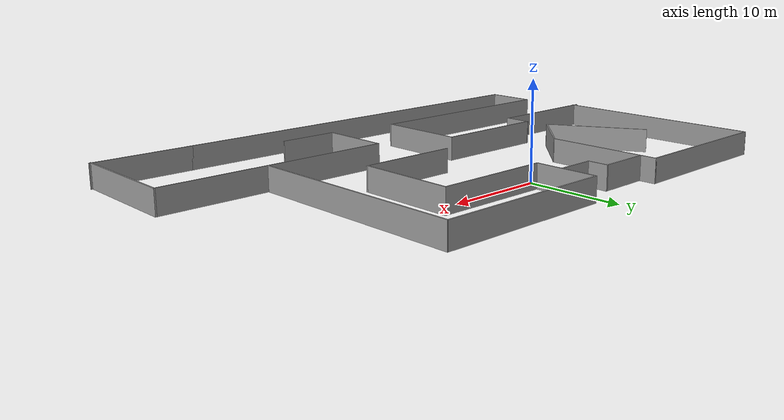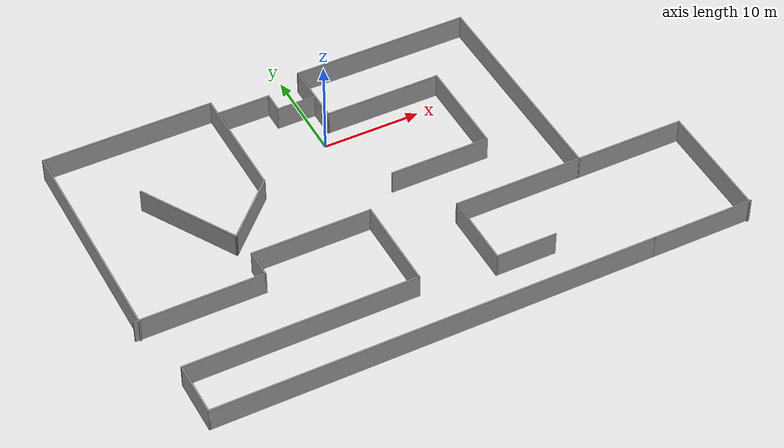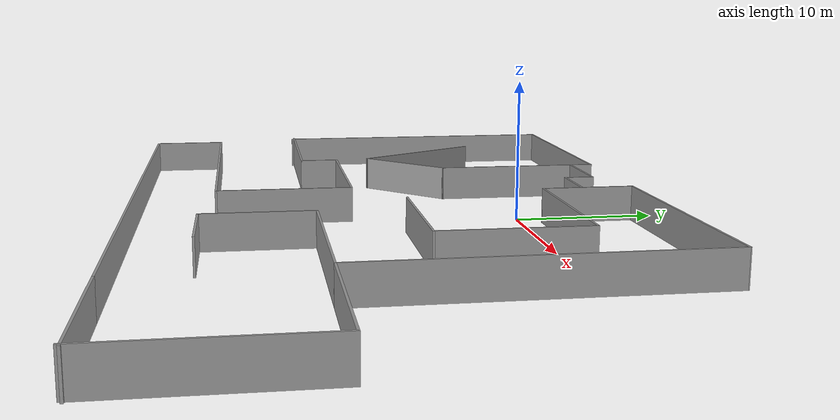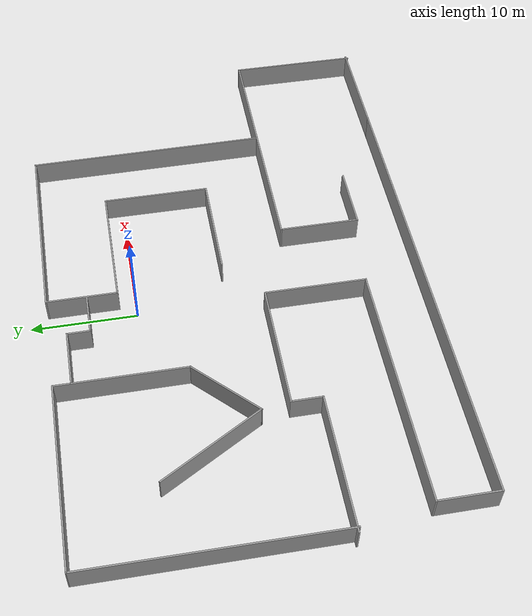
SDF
<?xml version='1.0'?>
<sdf version='1.7'>
  <model name='indoor'>
    <pose>2.23595 -9.50751 0 0 -0 0</pose>
    <link name='Wall_10'>
      <collision name='Wall_10_Collision'>
        <geometry>
          <box>
            <size>11 0.15 2.5</size>
          </box>
        </geometry>
        <pose>0 0 1.25 0 -0 0</pose>
      </collision>
      <visual name='Wall_10_Visual'>
        <pose>0 0 1.25 0 -0 0</pose>
        <geometry>
          <box>
            <size>11 0.15 2.5</size>
          </box>
        </geometry>
        <material>
          <script>
            <uri>file://media/materials/scripts/gazebo.material</uri>
            <name>Gazebo/Grey</name>
          </script>
          <ambient>1 1 1 1</ambient>
        </material>
        <meta>
          <layer>0</layer>
        </meta>
      </visual>
      <pose>-18.6044 4.94904 0 0 -0 2.0944</pose>
    </link>
    <link name='Wall_12'>
      <collision name='Wall_12_Collision'>
        <geometry>
          <box>
            <size>18.25 0.15 2.5</size>
          </box>
        </geometry>
        <pose>0 0 1.25 0 -0 0</pose>
      </collision>
      <visual name='Wall_12_Visual'>
        <pose>0 0 1.25 0 -0 0</pose>
        <geometry>
          <box>
            <size>18.25 0.15 2.5</size>
          </box>
        </geometry>
        <material>
          <script>
            <uri>file://media/materials/scripts/gazebo.material</uri>
            <name>Gazebo/Grey</name>
          </script>
          <ambient>1 1 1 1</ambient>
        </material>
        <meta>
          <layer>0</layer>
        </meta>
      </visual>
      <pose>7.93209 17.7249 0 0 -0 3.14159</pose>
    </link>
    <link name='Wall_13'>
      <collision name='Wall_13_Collision'>
        <geometry>
          <box>
            <size>6.75 0.15 2.5</size>
          </box>
        </geometry>
        <pose>0 0 1.25 0 -0 0</pose>
      </collision>
      <visual name='Wall_13_Visual'>
        <pose>0 0 1.25 0 -0 0</pose>
        <geometry>
          <box>
            <size>6.75 0.15 2.5</size>
          </box>
        </geometry>
        <material>
          <script>
            <uri>file://media/materials/scripts/gazebo.material</uri>
            <name>Gazebo/Grey</name>
          </script>
          <ambient>1 1 1 1</ambient>
        </material>
        <meta>
          <layer>0</layer>
        </meta>
      </visual>
      <pose>-1.11791 14.4249 0 0 -0 -1.5708</pose>
    </link>
    <link name='Wall_14'>
      <collision name='Wall_14_Collision'>
        <geometry>
          <box>
            <size>12 0.15 2.5</size>
          </box>
        </geometry>
        <pose>0 0 1.25 0 -0 0</pose>
      </collision>
      <visual name='Wall_14_Visual'>
        <pose>0 0 1.25 0 -0 0</pose>
        <geometry>
          <box>
            <size>12 0.15 2.5</size>
          </box>
        </geometry>
        <material>
          <script>
            <uri>file://media/materials/scripts/gazebo.material</uri>
            <name>Gazebo/Grey</name>
          </script>
          <ambient>1 1 1 1</ambient>
        </material>
        <meta>
          <layer>0</layer>
        </meta>
      </visual>
      <pose>4.80709 11.1249 0 0 -0 0</pose>
    </link>
    <link name='Wall_15'>
      <collision name='Wall_15_Collision'>
        <geometry>
          <box>
            <size>10.25 0.15 2.5</size>
          </box>
        </geometry>
        <pose>0 0 1.25 0 -0 0</pose>
      </collision>
      <visual name='Wall_15_Visual'>
        <pose>0 0 1.25 0 -0 0</pose>
        <geometry>
          <box>
            <size>10.25 0.15 2.5</size>
          </box>
        </geometry>
        <material>
          <script>
            <uri>file://media/materials/scripts/gazebo.material</uri>
            <name>Gazebo/Grey</name>
          </script>
          <ambient>1 1 1 1</ambient>
        </material>
        <meta>
          <layer>0</layer>
        </meta>
      </visual>
      <pose>10.7321 6.07486 0 0 -0 -1.5708</pose>
    </link>
    <link name='Wall_16'>
      <collision name='Wall_16_Collision'>
        <geometry>
          <box>
            <size>10.25 0.15 2.5</size>
          </box>
        </geometry>
        <pose>0 0 1.25 0 -0 0</pose>
      </collision>
      <visual name='Wall_16_Visual'>
        <pose>0 0 1.25 0 -0 0</pose>
        <geometry>
          <box>
            <size>10.25 0.15 2.5</size>
          </box>
        </geometry>
        <material>
          <script>
            <uri>file://media/materials/scripts/gazebo.material</uri>
            <name>Gazebo/Grey</name>
          </script>
          <ambient>1 1 1 1</ambient>
        </material>
        <meta>
          <layer>0</layer>
        </meta>
      </visual>
      <pose>5.68209 1.02486 0 0 -0 3.14159</pose>
    </link>
    <link name='Wall_19'>
      <collision name='Wall_19_Collision'>
        <geometry>
          <box>
            <size>2.25 0.15 2.5</size>
          </box>
        </geometry>
        <pose>0 0 1.25 0 -0 0</pose>
      </collision>
      <visual name='Wall_19_Visual'>
        <pose>0 0 1.25 0 -0 0</pose>
        <geometry>
          <box>
            <size>2.25 0.15 2.5</size>
          </box>
        </geometry>
        <material>
          <script>
            <uri>file://media/materials/scripts/gazebo.material</uri>
            <name>Gazebo/Grey</name>
          </script>
          <ambient>1 1 1 1</ambient>
        </material>
        <meta>
          <layer>0</layer>
        </meta>
      </visual>
      <pose>-5.09125 15.025 0 0 -0 -1.5708</pose>
    </link>
    <link name='Wall_20'>
      <collision name='Wall_20_Collision'>
        <geometry>
          <box>
            <size>4 0.15 2.5</size>
          </box>
        </geometry>
        <pose>0 0 1.25 0 -0 0</pose>
      </collision>
      <visual name='Wall_20_Visual'>
        <pose>0 0 1.25 0 -0 0</pose>
        <geometry>
          <box>
            <size>4 0.15 2.5</size>
          </box>
        </geometry>
        <material>
          <script>
            <uri>file://media/materials/scripts/gazebo.material</uri>
            <name>Gazebo/Grey</name>
          </script>
          <ambient>1 1 1 1</ambient>
        </material>
        <meta>
          <layer>0</layer>
        </meta>
      </visual>
      <pose>-3.16625 13.975 0 0 -0 0</pose>
    </link>
    <link name='Wall_24'>
      <collision name='Wall_24_Collision'>
        <geometry>
          <box>
            <size>5.5 0.15 2.5</size>
          </box>
        </geometry>
        <pose>0 0 1.25 0 -0 0</pose>
      </collision>
      <visual name='Wall_24_Visual'>
        <pose>0 0 1.25 0 -0 0</pose>
        <geometry>
          <box>
            <size>5.5 0.15 2.5</size>
          </box>
        </geometry>
        <material>
          <script>
            <uri>file://media/materials/scripts/gazebo.material</uri>
            <name>Gazebo/Grey</name>
          </script>
          <ambient>1 1 1 1</ambient>
        </material>
        <meta>
          <layer>0</layer>
        </meta>
      </visual>
      <pose>-7.76625 16.075 0 0 -0 3.14159</pose>
    </link>
    <link name='Wall_26'>
      <collision name='Wall_26_Collision'>
        <geometry>
          <box>
            <size>13 0.15 2.5</size>
          </box>
        </geometry>
        <pose>0 0 1.25 0 -0 0</pose>
      </collision>
      <visual name='Wall_26_Visual'>
        <pose>0 0 1.25 0 -0 0</pose>
        <geometry>
          <box>
            <size>13 0.15 2.5</size>
          </box>
        </geometry>
        <material>
          <script>
            <uri>file://media/materials/scripts/gazebo.material</uri>
            <name>Gazebo/Grey</name>
          </script>
          <ambient>1 1 1 1</ambient>
        </material>
        <meta>
          <layer>0</layer>
        </meta>
      </visual>
      <pose>-21.975 -5.22606 0 0 -0 0</pose>
    </link>
    <link name='Wall_27'>
      <collision name='Wall_27_Collision'>
        <geometry>
          <box>
            <size>3 0.15 2.5</size>
          </box>
        </geometry>
        <pose>0 0 1.25 0 -0 0</pose>
      </collision>
      <visual name='Wall_27_Visual'>
        <pose>0 0 1.25 0 -0 0</pose>
        <geometry>
          <box>
            <size>3 0.15 2.5</size>
          </box>
        </geometry>
        <material>
          <script>
            <uri>file://media/materials/scripts/gazebo.material</uri>
            <name>Gazebo/Grey</name>
          </script>
          <ambient>1 1 1 1</ambient>
        </material>
        <meta>
          <layer>0</layer>
        </meta>
      </visual>
      <pose>-15.55 -3.80106 0 0 -0 1.5708</pose>
    </link>
    <link name='Wall_28'>
      <collision name='Wall_28_Collision'>
        <geometry>
          <box>
            <size>12.25 0.15 2.5</size>
          </box>
        </geometry>
        <pose>0 0 1.25 0 -0 0</pose>
      </collision>
      <visual name='Wall_28_Visual'>
        <pose>0 0 1.25 0 -0 0</pose>
        <geometry>
          <box>
            <size>12.25 0.15 2.5</size>
          </box>
        </geometry>
        <material>
          <script>
            <uri>file://media/materials/scripts/gazebo.material</uri>
            <name>Gazebo/Grey</name>
          </script>
          <ambient>1 1 1 1</ambient>
        </material>
        <meta>
          <layer>0</layer>
        </meta>
      </visual>
      <pose>-9.5 -2.37606 0 0 -0 0</pose>
    </link>
    <link name='Wall_29'>
      <collision name='Wall_29_Collision'>
        <geometry>
          <box>
            <size>9.75 0.15 2.5</size>
          </box>
        </geometry>
        <pose>0 0 1.25 0 -0 0</pose>
      </collision>
      <visual name='Wall_29_Visual'>
        <pose>0 0 1.25 0 -0 0</pose>
        <geometry>
          <box>
            <size>9.75 0.15 2.5</size>
          </box>
        </geometry>
        <material>
          <script>
            <uri>file://media/materials/scripts/gazebo.material</uri>
            <name>Gazebo/Grey</name>
          </script>
          <ambient>1 1 1 1</ambient>
        </material>
        <meta>
          <layer>0</layer>
        </meta>
      </visual>
      <pose>-3.45 -7.17606 0 0 -0 -1.5708</pose>
    </link>
    <link name='Wall_3'>
      <collision name='Wall_3_Collision'>
        <geometry>
          <box>
            <size>23.25 0.15 2.5</size>
          </box>
        </geometry>
        <pose>0 0 1.25 0 -0 0</pose>
      </collision>
      <visual name='Wall_3_Visual'>
        <pose>0 0 1.25 0 -0 0</pose>
        <geometry>
          <box>
            <size>23.25 0.15 2.5</size>
          </box>
        </geometry>
        <material>
          <script>
            <uri>file://media/materials/scripts/gazebo.material</uri>
            <name>Gazebo/Grey</name>
          </script>
          <ambient>1 1 1 1</ambient>
        </material>
        <meta>
          <layer>0</layer>
        </meta>
      </visual>
      <pose>17.0635 6.17486 0 0 -0 -1.56375</pose>
    </link>
    <link name='Wall_30'>
      <collision name='Wall_30_Collision'>
        <geometry>
          <box>
            <size>23.5 0.15 2.5</size>
          </box>
        </geometry>
        <pose>0 0 1.25 0 -0 0</pose>
      </collision>
      <visual name='Wall_30_Visual'>
        <pose>0 0 1.25 0 -0 0</pose>
        <geometry>
          <box>
            <size>23.5 0.15 2.5</size>
          </box>
        </geometry>
        <material>
          <script>
            <uri>file://media/materials/scripts/gazebo.material</uri>
            <name>Gazebo/Grey</name>
          </script>
          <ambient>1 1 1 1</ambient>
        </material>
        <meta>
          <layer>0</layer>
        </meta>
      </visual>
      <pose>-15.125 -11.9761 0 0 -0 3.14159</pose>
    </link>
    <link name='Wall_31'>
      <collision name='Wall_31_Collision'>
        <geometry>
          <box>
            <size>5.75 0.15 2.5</size>
          </box>
        </geometry>
        <pose>0 0 1.25 0 -0 0</pose>
      </collision>
      <visual name='Wall_31_Visual'>
        <pose>0 0 1.25 0 -0 0</pose>
        <geometry>
          <box>
            <size>5.75 0.15 2.5</size>
          </box>
        </geometry>
        <material>
          <script>
            <uri>file://media/materials/scripts/gazebo.material</uri>
            <name>Gazebo/Grey</name>
          </script>
          <ambient>1 1 1 1</ambient>
        </material>
        <meta>
          <layer>0</layer>
        </meta>
      </visual>
      <pose>-26.8 -14.7761 0 0 -0 -1.5708</pose>
    </link>
    <link name='Wall_32'>
      <collision name='Wall_32_Collision'>
        <geometry>
          <box>
            <size>45 0.15 2.5</size>
          </box>
        </geometry>
        <pose>0 0 1.25 0 -0 0</pose>
      </collision>
      <visual name='Wall_32_Visual'>
        <pose>0 0 1.25 0 -0 0</pose>
        <geometry>
          <box>
            <size>45 0.15 2.5</size>
          </box>
        </geometry>
        <material>
          <script>
            <uri>file://media/materials/scripts/gazebo.material</uri>
            <name>Gazebo/Grey</name>
          </script>
          <ambient>1 1 1 1</ambient>
        </material>
        <meta>
          <layer>0</layer>
        </meta>
      </visual>
      <pose>-4.375 -17.5761 0 0 -0 0</pose>
    </link>
    <link name='Wall_36'>
      <collision name='Wall_36_Collision'>
        <geometry>
          <box>
            <size>13.25 0.15 2.5</size>
          </box>
        </geometry>
        <pose>0 0 1.25 0 -0 0</pose>
      </collision>
      <visual name='Wall_36_Visual'>
        <pose>0 0 1.25 0 -0 0</pose>
        <geometry>
          <box>
            <size>13.25 0.15 2.5</size>
          </box>
        </geometry>
        <material>
          <script>
            <uri>file://media/materials/scripts/gazebo.material</uri>
            <name>Gazebo/Grey</name>
          </script>
          <ambient>1 1 1 1</ambient>
        </material>
        <meta>
          <layer>0</layer>
        </meta>
      </visual>
      <pose>10.5948 -5.37514 0 0 -0 3.14159</pose>
    </link>
    <link name='Wall_37'>
      <collision name='Wall_37_Collision'>
        <geometry>
          <box>
            <size>7.75 0.15 2.5</size>
          </box>
        </geometry>
        <pose>0 0 1.25 0 -0 0</pose>
      </collision>
      <visual name='Wall_37_Visual'>
        <pose>0 0 1.25 0 -0 0</pose>
        <geometry>
          <box>
            <size>7.75 0.15 2.5</size>
          </box>
        </geometry>
        <material>
          <script>
            <uri>file://media/materials/scripts/gazebo.material</uri>
            <name>Gazebo/Grey</name>
          </script>
          <ambient>1 1 1 1</ambient>
        </material>
        <meta>
          <layer>0</layer>
        </meta>
      </visual>
      <pose>4.04483 -9.17514 0 0 -0 -1.5708</pose>
    </link>
    <link name='Wall_38'>
      <collision name='Wall_38_Collision'>
        <geometry>
          <box>
            <size>6.25 0.15 2.5</size>
          </box>
        </geometry>
        <pose>0 0 1.25 0 -0 0</pose>
      </collision>
      <visual name='Wall_38_Visual'>
        <pose>0 0 1.25 0 -0 0</pose>
        <geometry>
          <box>
            <size>6.25 0.15 2.5</size>
          </box>
        </geometry>
        <material>
          <script>
            <uri>file://media/materials/scripts/gazebo.material</uri>
            <name>Gazebo/Grey</name>
          </script>
          <ambient>1 1 1 1</ambient>
        </material>
        <meta>
          <layer>0</layer>
        </meta>
      </visual>
      <pose>7.09483 -12.9751 0 0 -0 0</pose>
    </link>
    <link name='Wall_40'>
      <collision name='Wall_40_Collision'>
        <geometry>
          <box>
            <size>11.25 0.15 2.5</size>
          </box>
        </geometry>
        <pose>0 0 1.25 0 -0 0</pose>
      </collision>
      <visual name='Wall_40_Visual'>
        <pose>0 0 1.25 0 -0 0</pose>
        <geometry>
          <box>
            <size>11.25 0.15 2.5</size>
          </box>
        </geometry>
        <material>
          <script>
            <uri>file://media/materials/scripts/gazebo.material</uri>
            <name>Gazebo/Grey</name>
          </script>
          <ambient>1 1 1 1</ambient>
        </material>
        <meta>
          <layer>0</layer>
        </meta>
      </visual>
      <pose>22.6948 -5.37514 0 0 -0 0</pose>
    </link>
    <link name='Wall_41'>
      <collision name='Wall_41_Collision'>
        <geometry>
          <box>
            <size>12.5 0.15 2.5</size>
          </box>
        </geometry>
        <pose>0 0 1.25 0 -0 0</pose>
      </collision>
      <visual name='Wall_41_Visual'>
        <pose>0 0 1.25 0 -0 0</pose>
        <geometry>
          <box>
            <size>12.5 0.15 2.5</size>
          </box>
        </geometry>
        <material>
          <script>
            <uri>file://media/materials/scripts/gazebo.material</uri>
            <name>Gazebo/Grey</name>
          </script>
          <ambient>1 1 1 1</ambient>
        </material>
        <meta>
          <layer>0</layer>
        </meta>
      </visual>
      <pose>28.2448 -11.5501 0 0 -0 -1.5708</pose>
    </link>
    <link name='Wall_45'>
      <collision name='Wall_45_Collision'>
        <geometry>
          <box>
            <size>10.5 0.15 2.5</size>
          </box>
        </geometry>
        <pose>0 0 1.25 0 -0 0</pose>
      </collision>
      <visual name='Wall_45_Visual'>
        <pose>0 0 1.25 0 -0 0</pose>
        <geometry>
          <box>
            <size>10.5 0.15 2.5</size>
          </box>
        </geometry>
        <material>
          <script>
            <uri>file://media/materials/scripts/gazebo.material</uri>
            <name>Gazebo/Grey</name>
          </script>
          <ambient>1 1 1 1</ambient>
        </material>
        <meta>
          <layer>0</layer>
        </meta>
      </visual>
      <pose>23.225 -17.5761 0 0 -0 0</pose>
    </link>
    <link name='Wall_5'>
      <collision name='Wall_5_Collision'>
        <geometry>
          <box>
            <size>23.2502 0.15 2.5</size>
          </box>
        </geometry>
        <pose>0 0 1.25 0 -0 0</pose>
      </collision>
      <visual name='Wall_5_Visual'>
        <pose>0 0 1.25 0 -0 0</pose>
        <geometry>
          <box>
            <size>23.2502 0.15 2.5</size>
          </box>
        </geometry>
        <material>
          <script>
            <uri>file://media/materials/scripts/gazebo.material</uri>
            <name>Gazebo/Grey</name>
          </script>
          <ambient>1 1 1 1</ambient>
        </material>
        <meta>
          <layer>0</layer>
        </meta>
      </visual>
      <pose>-27.9115 6.17486 0 0 -0 1.56702</pose>
    </link>
    <link name='Wall_7'>
      <collision name='Wall_7_Collision'>
        <geometry>
          <box>
            <size>17.5 0.15 2.5</size>
          </box>
        </geometry>
        <pose>0 0 1.25 0 -0 0</pose>
      </collision>
      <visual name='Wall_7_Visual'>
        <pose>0 0 1.25 0 -0 0</pose>
        <geometry>
          <box>
            <size>17.5 0.15 2.5</size>
          </box>
        </geometry>
        <material>
          <script>
            <uri>file://media/materials/scripts/gazebo.material</uri>
            <name>Gazebo/Grey</name>
          </script>
          <ambient>1 1 1 1</ambient>
        </material>
        <meta>
          <layer>0</layer>
        </meta>
      </visual>
      <pose>-19.1929 17.7249 0 0 -0 0</pose>
    </link>
    <link name='Wall_8'>
      <collision name='Wall_8_Collision'>
        <geometry>
          <box>
            <size>12.25 0.15 2.5</size>
          </box>
        </geometry>
        <pose>0 0 1.25 0 -0 0</pose>
      </collision>
      <visual name='Wall_8_Visual'>
        <pose>0 0 1.25 0 -0 0</pose>
        <geometry>
          <box>
            <size>12.25 0.15 2.5</size>
          </box>
        </geometry>
        <material>
          <script>
            <uri>file://media/materials/scripts/gazebo.material</uri>
            <name>Gazebo/Grey</name>
          </script>
          <ambient>1 1 1 1</ambient>
        </material>
        <meta>
          <layer>0</layer>
        </meta>
      </visual>
      <pose>-10.5179 11.6749 0 0 -0 -1.5708</pose>
    </link>
    <link name='Wall_9'>
      <collision name='Wall_9_Collision'>
        <geometry>
          <box>
            <size>7.75 0.15 2.5</size>
          </box>
        </geometry>
        <pose>0 0 1.25 0 -0 0</pose>
      </collision>
      <visual name='Wall_9_Visual'>
        <pose>0 0 1.25 0 -0 0</pose>
        <geometry>
          <box>
            <size>7.75 0.15 2.5</size>
          </box>
        </geometry>
        <material>
          <script>
            <uri>file://media/materials/scripts/gazebo.material</uri>
            <name>Gazebo/Grey</name>
          </script>
          <ambient>1 1 1 1</ambient>
        </material>
        <meta>
          <layer>0</layer>
        </meta>
      </visual>
      <pose>-13.2049 2.93785 0 0 -0 -2.35619</pose>
    </link>
    <static>1</static>
  </model>
</sdf>
